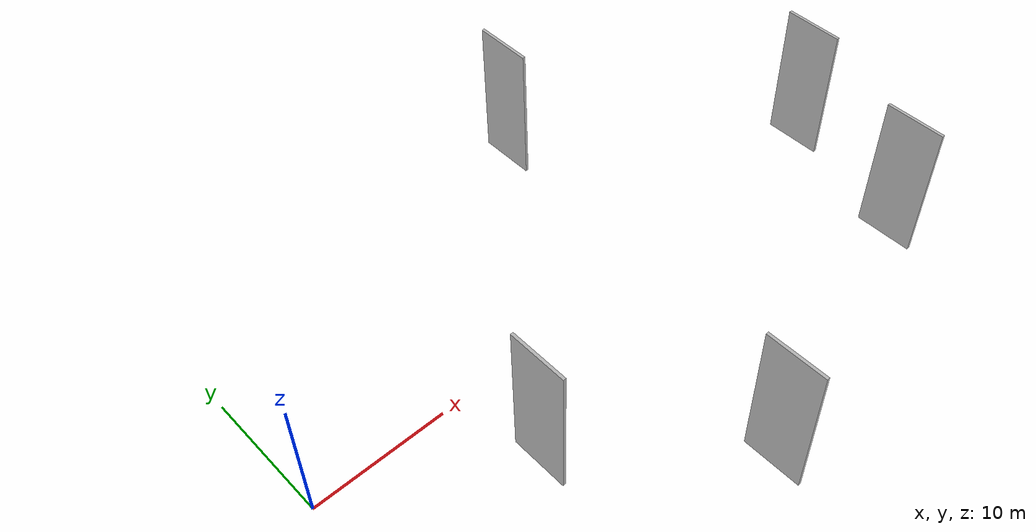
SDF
<sdf version="1.6">
 <world name="default">
  <scene>
   <sky><clouds><speed>12</speed></clouds></sky>
   <ambient>0.4 0.4 0.4 1</ambient>
   <background>0.7 0.7 0.7 1</background>
   <shadows>1</shadows>
  </scene>
  <gravity>0 0 -9.8066</gravity>
  <magnetic_field>6e-06 2.3e-05 -4.2e-05</magnetic_field>
  <physics default="0" name="default_physics" type="ode">
   <ode>
    <solver>
     <type>quick</type>
     <iters>10</iters>
     <sor>1.0</sor>
     <use_dynamic_moi_rescaling>0</use_dynamic_moi_rescaling>
    </solver>
    <constraints>
     <cfm>0</cfm>
     <erp>0.2</erp>
     <contact_max_correcting_vel>100</contact_max_correcting_vel>
     <contact_surface_layer>0.001</contact_surface_layer>
    </constraints>
   </ode>
   <max_step_size>0.004</max_step_size>
   <real_time_factor>1</real_time_factor>
   <real_time_update_rate>250</real_time_update_rate>
  </physics>
  <light name="sun" type="directional">
   <pose>0 0 10 0 0 0</pose>
   <diffuse>0.8 0.8 0.8 1</diffuse>
   <specular>0.2 0.2 0.2 1</specular>
   <attenuation>
    <range>1000</range>
    <constant>0.9</constant>
    <linear>0.01</linear>
    <quadratic>0.001</quadratic>
   </attenuation>
   <direction>-0.5 0.1 -0.9</direction>
  </light>
  <model name="grey_wall_1">
   <static>1</static>
   <pose>38.7763 -11.7403 5.0 0.000000 0.000000 1.570796</pose>
   <link name="link">
    <pose>0 0 5.00 0 0 0</pose>
    <collision name="collision"><geometry><box><size>4.00 0.2 10.00</size></box></geometry></collision>
    <visual name="visual">
     <cast_shadows>0</cast_shadows>
     <geometry><box><size>4.00 0.2 10.00</size></box></geometry>
     <material>
      <script>
       <uri>model://HANNAS_wall/materials/scripts</uri>
       <uri>model://HANNAS_wall/materials/textures</uri>
       <name>vrc/HANNAS_wall</name>
      </script>
     </material>
    </visual>
   </link>
  </model>
  <model name="grey_wall_2">
   <static>1</static>
   <pose>41.6055 -1.6199 5.0 0.000000 0.000000 1.570796</pose>
   <link name="link">
    <pose>0 0 5.00 0 0 0</pose>
    <collision name="collision"><geometry><box><size>4.00 0.2 10.00</size></box></geometry></collision>
    <visual name="visual">
     <cast_shadows>0</cast_shadows>
     <geometry><box><size>4.00 0.2 10.00</size></box></geometry>
     <material>
      <script>
       <uri>model://HANNAS_wall/materials/scripts</uri>
       <uri>model://HANNAS_wall/materials/textures</uri>
       <name>vrc/HANNAS_wall</name>
      </script>
     </material>
    </visual>
   </link>
  </model>
  <model name="grey_wall_3">
   <static>1</static>
   <pose>10.0283 -9.2500 5.0 0.000000 0.000000 1.570796</pose>
   <link name="link">
    <pose>0 0 5.00 0 0 0</pose>
    <collision name="collision"><geometry><box><size>4.00 0.2 10.00</size></box></geometry></collision>
    <visual name="visual">
     <cast_shadows>0</cast_shadows>
     <geometry><box><size>4.00 0.2 10.00</size></box></geometry>
     <material>
      <script>
       <uri>model://HANNAS_wall/materials/scripts</uri>
       <uri>model://HANNAS_wall/materials/textures</uri>
       <name>vrc/HANNAS_wall</name>
      </script>
     </material>
    </visual>
   </link>
  </model>
  <model name="grey_wall_4">
   <static>1</static>
   <pose>25.3901 10.8947 5.0 0.000000 0.000000 1.570796</pose>
   <link name="link">
    <pose>0 0 5.00 0 0 0</pose>
    <collision name="collision"><geometry><box><size>4.00 0.2 10.00</size></box></geometry></collision>
    <visual name="visual">
     <cast_shadows>0</cast_shadows>
     <geometry><box><size>4.00 0.2 10.00</size></box></geometry>
     <material>
      <script>
       <uri>model://HANNAS_wall/materials/scripts</uri>
       <uri>model://HANNAS_wall/materials/textures</uri>
       <name>vrc/HANNAS_wall</name>
      </script>
     </material>
    </visual>
   </link>
  </model>
  <model name="grey_wall_5">
   <static>1</static>
   <pose>19.6578 -18.2230 5.0 0.000000 0.000000 1.570796</pose>
   <link name="link">
    <pose>0 0 5.00 0 0 0</pose>
    <collision name="collision"><geometry><box><size>4.00 0.2 10.00</size></box></geometry></collision>
    <visual name="visual">
     <cast_shadows>0</cast_shadows>
     <geometry><box><size>4.00 0.2 10.00</size></box></geometry>
     <material>
      <script>
       <uri>model://HANNAS_wall/materials/scripts</uri>
       <uri>model://HANNAS_wall/materials/textures</uri>
       <name>vrc/HANNAS_wall</name>
      </script>
     </material>
    </visual>
   </link>
  </model>
 </world>
</sdf>
